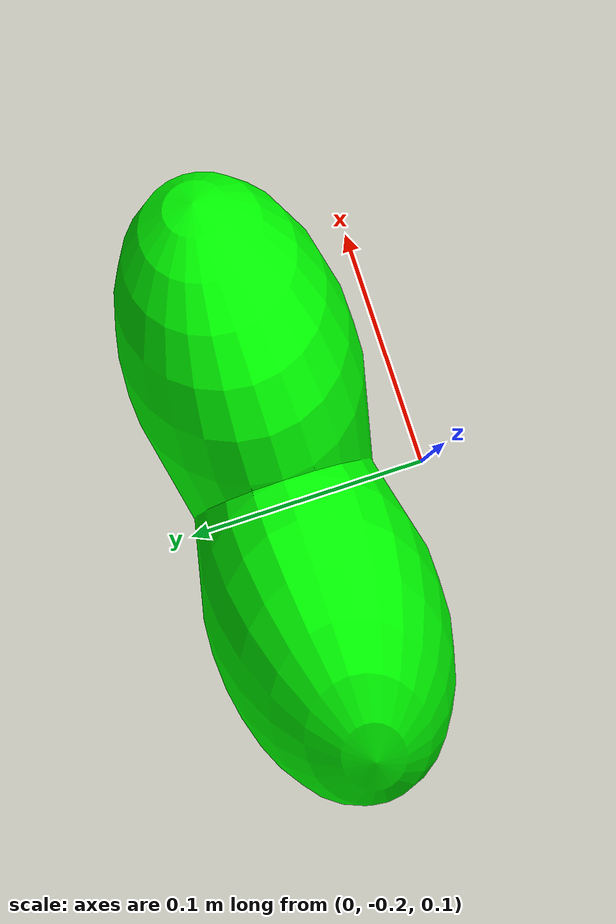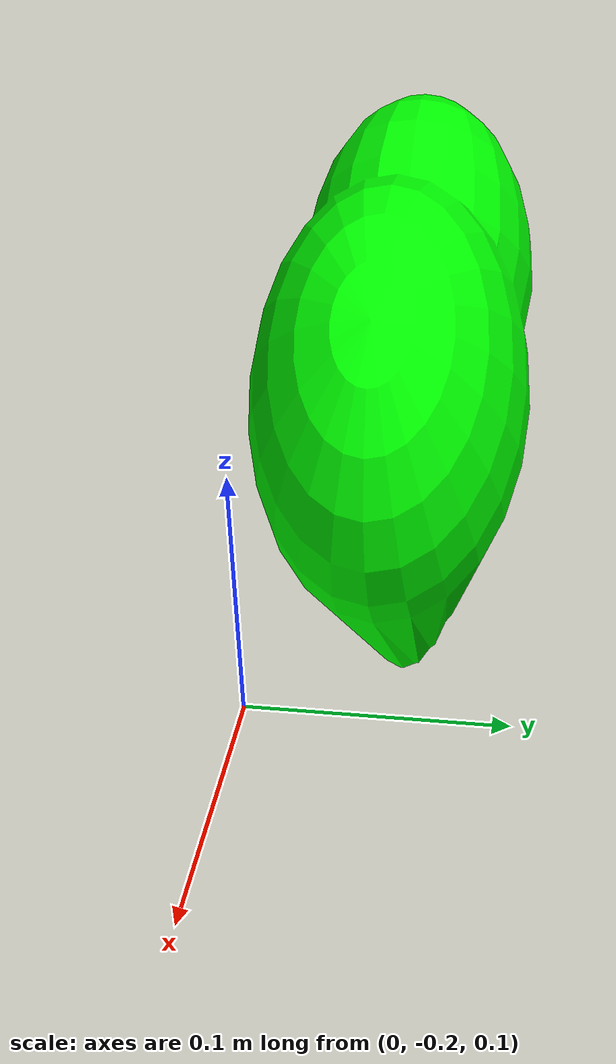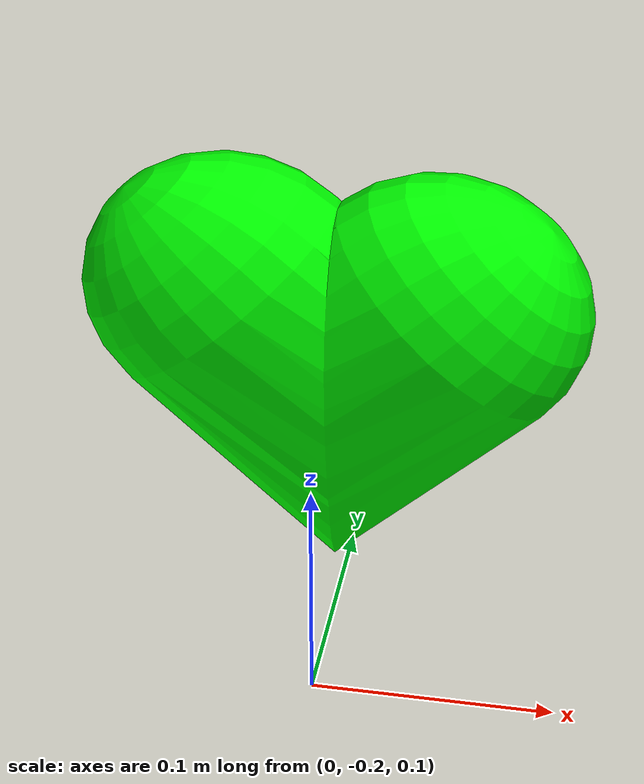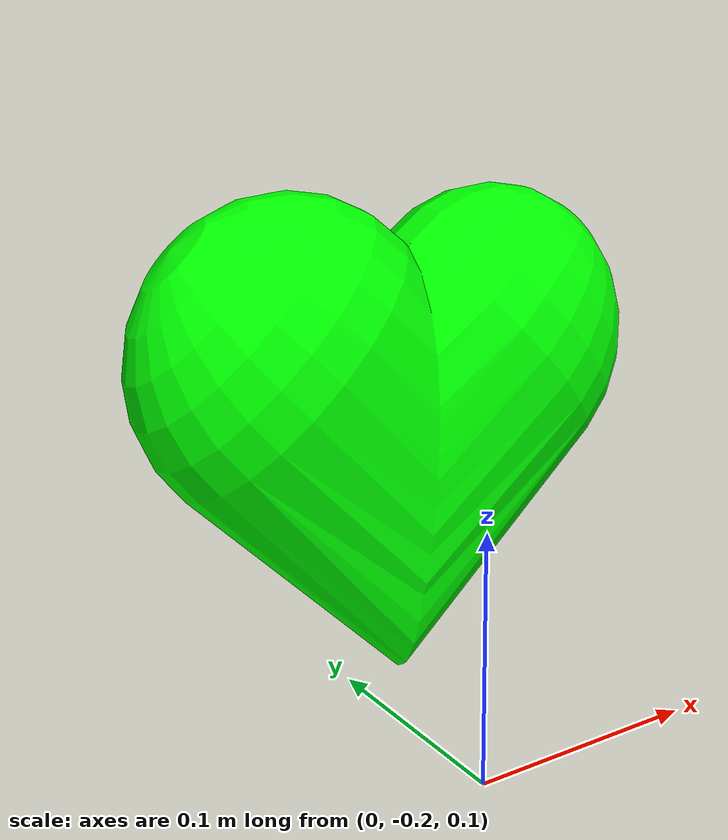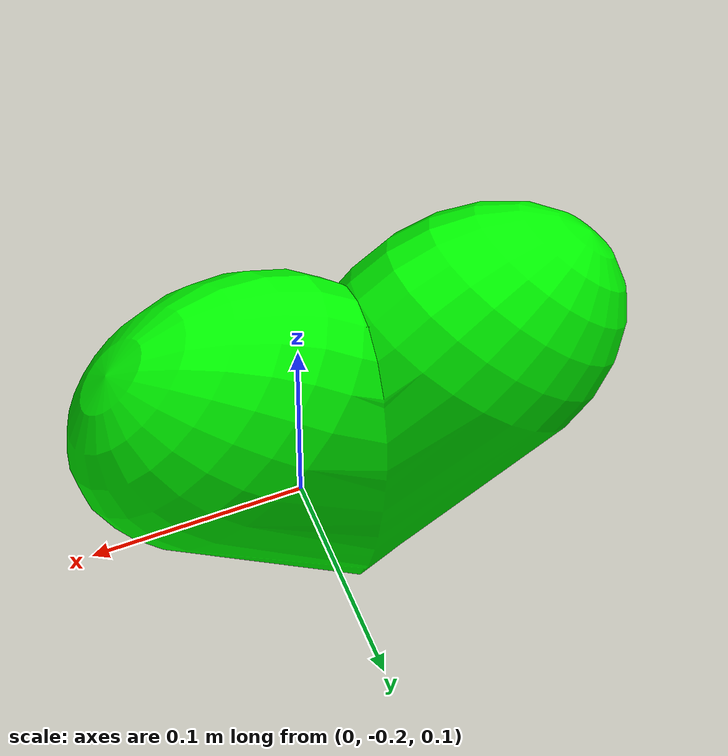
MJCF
<mujoco model="heart">

    <asset>
        <mesh name="heart" file="/home/jianrenw/prox/tslam/mj_envs/mj_envs/envs/hand_manipulation_suite/assets/stl/Simple_Shape.stl" scale="0.0008 0.0008 0.0008"/>
        <mesh name="contact0" file="/home/jianrenw/prox/tslam/mj_envs/mj_envs/envs/hand_manipulation_suite/assets/stl/Simple_Shape.stl" scale="0.0008 0.0008 0.0008"/>
    </asset>

    <worldbody>
        <body name="object" pos="0 -0.14 0.22" >
            <!--geom name="heart_visual" type="mesh" contype="0" conaffinity="0" mass="0" group="1" mesh="heart" rgba="1 0 0 1.0" /-->
            <geom name="heart_contact0" density="1250" type="mesh" mesh="contact0" condim="4" rgba="0 1 0 1"/>
        </body>
    </worldbody>
</mujoco>
